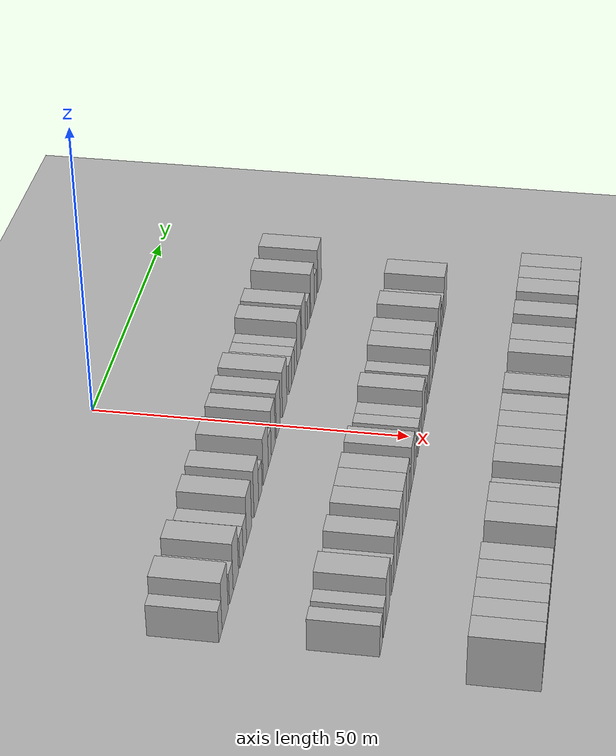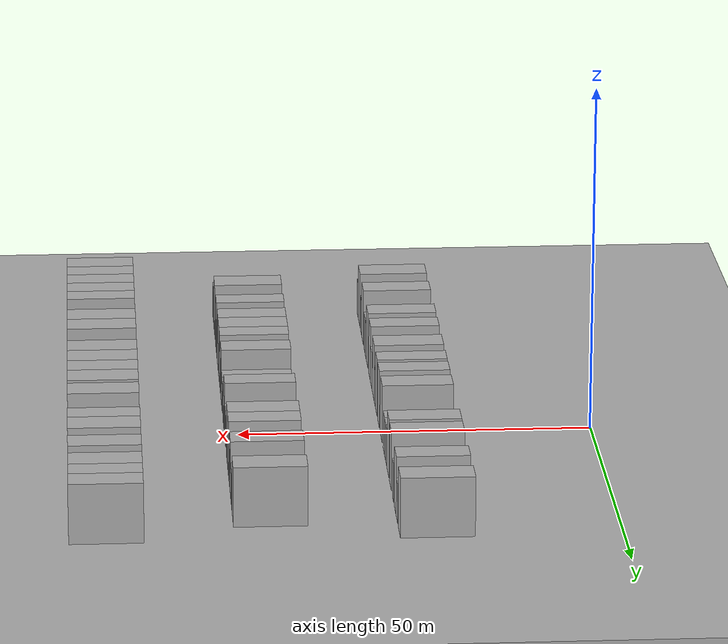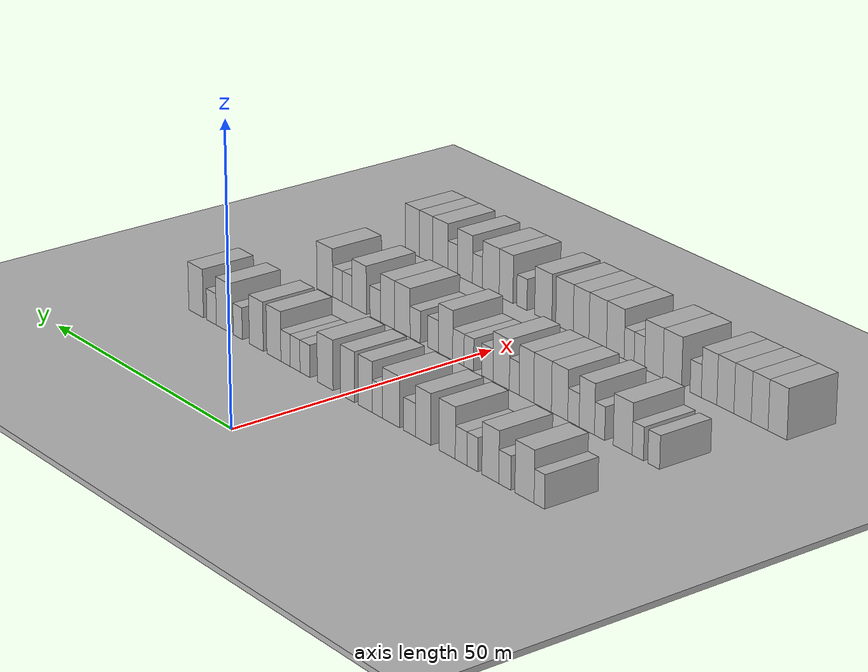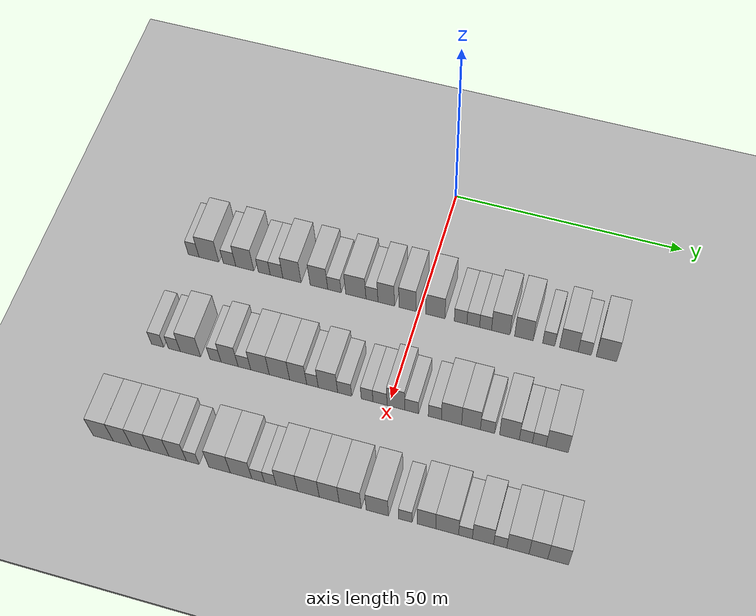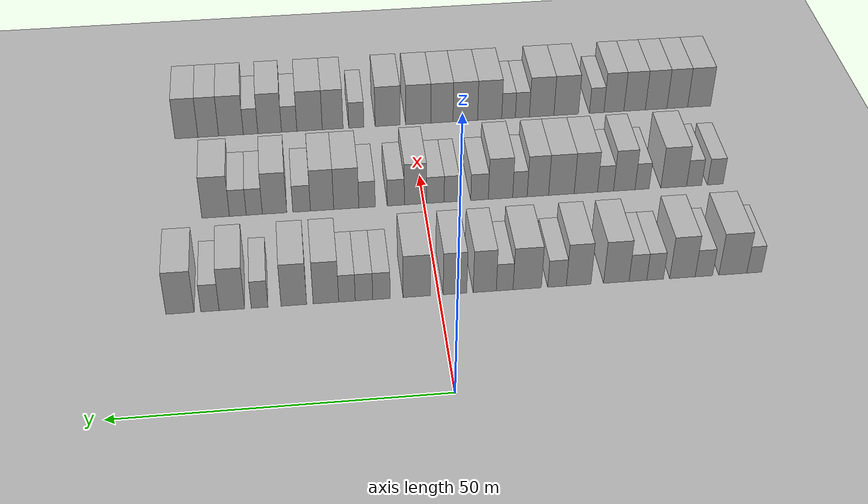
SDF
<sdf version="1.6">
 <world name="default">
  <include><name>ground_plane_1</name><uri>model://HANNAS_ground_plane</uri></include>
  <include>
   <name>ground_plane_2</name>
   <uri>model://HANNAS_ground_plane</uri>
   <pose>100 0 0  0 0 0</pose>
  </include>
  <model name="building_50">
   <static>1</static>
   <pose>25.0000 -49.7026 0 0.000000 0.000000 0.000000</pose>
   <link name="link">
    <pose>0 0 3.00 0 0 0</pose>
    <collision name="collision"><geometry><box><size>10.0000 2.4135 6.0000</size></box></geometry></collision>
    <visual name="visual">
     <cast_shadows>0</cast_shadows>
     <geometry><box><size>10.0000 2.4135 6.0000</size></box></geometry>
     <material>
      <script>
       <uri>model://HANNAS_wall/materials/scripts</uri>
       <uri>model://HANNAS_wall/materials/textures</uri>
       <name>vrc/HANNAS_wall</name>
      </script>
     </material>
    </visual>
   </link>
  </model>
  <model name="building_51">
   <static>1</static>
   <pose>25.0000 -46.2584 0 0.000000 0.000000 0.000000</pose>
   <link name="link">
    <pose>0 0 4.50 0 0 0</pose>
    <collision name="collision"><geometry><box><size>10.0000 4.4748 9.0000</size></box></geometry></collision>
    <visual name="visual">
     <cast_shadows>0</cast_shadows>
     <geometry><box><size>10.0000 4.4748 9.0000</size></box></geometry>
     <material>
      <script>
       <uri>model://HANNAS_wall/materials/scripts</uri>
       <uri>model://HANNAS_wall/materials/textures</uri>
       <name>vrc/HANNAS_wall</name>
      </script>
     </material>
    </visual>
   </link>
  </model>
  <model name="building_52">
   <static>1</static>
   <pose>25.0000 -41.6211 0 0.000000 0.000000 0.000000</pose>
   <link name="link">
    <pose>0 0 3.00 0 0 0</pose>
    <collision name="collision"><geometry><box><size>10.0000 2.7998 6.0000</size></box></geometry></collision>
    <visual name="visual">
     <cast_shadows>0</cast_shadows>
     <geometry><box><size>10.0000 2.7998 6.0000</size></box></geometry>
     <material>
      <script>
       <uri>model://HANNAS_wall/materials/scripts</uri>
       <uri>model://HANNAS_wall/materials/textures</uri>
       <name>vrc/HANNAS_wall</name>
      </script>
     </material>
    </visual>
   </link>
  </model>
  <model name="building_53">
   <static>1</static>
   <pose>25.0000 -38.1938 0 0.000000 0.000000 0.000000</pose>
   <link name="link">
    <pose>0 0 4.50 0 0 0</pose>
    <collision name="collision"><geometry><box><size>10.0000 4.0550 9.0000</size></box></geometry></collision>
    <visual name="visual">
     <cast_shadows>0</cast_shadows>
     <geometry><box><size>10.0000 4.0550 9.0000</size></box></geometry>
     <material>
      <script>
       <uri>model://HANNAS_wall/materials/scripts</uri>
       <uri>model://HANNAS_wall/materials/textures</uri>
       <name>vrc/HANNAS_wall</name>
      </script>
     </material>
    </visual>
   </link>
  </model>
  <model name="building_54">
   <static>1</static>
   <pose>25.0000 -33.8388 0 0.000000 0.000000 0.000000</pose>
   <link name="link">
    <pose>0 0 3.00 0 0 0</pose>
    <collision name="collision"><geometry><box><size>10.0000 2.6549 6.0000</size></box></geometry></collision>
    <visual name="visual">
     <cast_shadows>0</cast_shadows>
     <geometry><box><size>10.0000 2.6549 6.0000</size></box></geometry>
     <material>
      <script>
       <uri>model://HANNAS_wall/materials/scripts</uri>
       <uri>model://HANNAS_wall/materials/textures</uri>
       <name>vrc/HANNAS_wall</name>
      </script>
     </material>
    </visual>
   </link>
  </model>
  <model name="building_55">
   <static>1</static>
   <pose>25.0000 -31.1030 0 0.000000 0.000000 0.000000</pose>
   <link name="link">
    <pose>0 0 3.00 0 0 0</pose>
    <collision name="collision"><geometry><box><size>10.0000 2.8168 6.0000</size></box></geometry></collision>
    <visual name="visual">
     <cast_shadows>0</cast_shadows>
     <geometry><box><size>10.0000 2.8168 6.0000</size></box></geometry>
     <material>
      <script>
       <uri>model://HANNAS_wall/materials/scripts</uri>
       <uri>model://HANNAS_wall/materials/textures</uri>
       <name>vrc/HANNAS_wall</name>
      </script>
     </material>
    </visual>
   </link>
  </model>
  <model name="building_56">
   <static>1</static>
   <pose>25.0000 -27.6765 0 0.000000 0.000000 0.000000</pose>
   <link name="link">
    <pose>0 0 4.50 0 0 0</pose>
    <collision name="collision"><geometry><box><size>10.0000 4.0362 9.0000</size></box></geometry></collision>
    <visual name="visual">
     <cast_shadows>0</cast_shadows>
     <geometry><box><size>10.0000 4.0362 9.0000</size></box></geometry>
     <material>
      <script>
       <uri>model://HANNAS_wall/materials/scripts</uri>
       <uri>model://HANNAS_wall/materials/textures</uri>
       <name>vrc/HANNAS_wall</name>
      </script>
     </material>
    </visual>
   </link>
  </model>
  <model name="building_57">
   <static>1</static>
   <pose>25.0000 -21.7188 0 0.000000 0.000000 0.000000</pose>
   <link name="link">
    <pose>0 0 4.50 0 0 0</pose>
    <collision name="collision"><geometry><box><size>10.0000 3.8792 9.0000</size></box></geometry></collision>
    <visual name="visual">
     <cast_shadows>0</cast_shadows>
     <geometry><box><size>10.0000 3.8792 9.0000</size></box></geometry>
     <material>
      <script>
       <uri>model://HANNAS_wall/materials/scripts</uri>
       <uri>model://HANNAS_wall/materials/textures</uri>
       <name>vrc/HANNAS_wall</name>
      </script>
     </material>
    </visual>
   </link>
  </model>
  <model name="building_58">
   <static>1</static>
   <pose>25.0000 -18.3108 0 0.000000 0.000000 0.000000</pose>
   <link name="link">
    <pose>0 0 3.00 0 0 0</pose>
    <collision name="collision"><geometry><box><size>10.0000 2.9367 6.0000</size></box></geometry></collision>
    <visual name="visual">
     <cast_shadows>0</cast_shadows>
     <geometry><box><size>10.0000 2.9367 6.0000</size></box></geometry>
     <material>
      <script>
       <uri>model://HANNAS_wall/materials/scripts</uri>
       <uri>model://HANNAS_wall/materials/textures</uri>
       <name>vrc/HANNAS_wall</name>
      </script>
     </material>
    </visual>
   </link>
  </model>
  <model name="building_59">
   <static>1</static>
   <pose>25.0000 -13.6233 0 0.000000 0.000000 0.000000</pose>
   <link name="link">
    <pose>0 0 4.50 0 0 0</pose>
    <collision name="collision"><geometry><box><size>10.0000 4.4383 9.0000</size></box></geometry></collision>
    <visual name="visual">
     <cast_shadows>0</cast_shadows>
     <geometry><box><size>10.0000 4.4383 9.0000</size></box></geometry>
     <material>
      <script>
       <uri>model://HANNAS_wall/materials/scripts</uri>
       <uri>model://HANNAS_wall/materials/textures</uri>
       <name>vrc/HANNAS_wall</name>
      </script>
     </material>
    </visual>
   </link>
  </model>
  <model name="building_60">
   <static>1</static>
   <pose>25.0000 -10.0936 0 0.000000 0.000000 0.000000</pose>
   <link name="link">
    <pose>0 0 3.00 0 0 0</pose>
    <collision name="collision"><geometry><box><size>10.0000 2.6211 6.0000</size></box></geometry></collision>
    <visual name="visual">
     <cast_shadows>0</cast_shadows>
     <geometry><box><size>10.0000 2.6211 6.0000</size></box></geometry>
     <material>
      <script>
       <uri>model://HANNAS_wall/materials/scripts</uri>
       <uri>model://HANNAS_wall/materials/textures</uri>
       <name>vrc/HANNAS_wall</name>
      </script>
     </material>
    </visual>
   </link>
  </model>
  <model name="building_61">
   <static>1</static>
   <pose>25.0000 -6.9780 0 0.000000 0.000000 0.000000</pose>
   <link name="link">
    <pose>0 0 4.50 0 0 0</pose>
    <collision name="collision"><geometry><box><size>10.0000 3.6102 9.0000</size></box></geometry></collision>
    <visual name="visual">
     <cast_shadows>0</cast_shadows>
     <geometry><box><size>10.0000 3.6102 9.0000</size></box></geometry>
     <material>
      <script>
       <uri>model://HANNAS_wall/materials/scripts</uri>
       <uri>model://HANNAS_wall/materials/textures</uri>
       <name>vrc/HANNAS_wall</name>
      </script>
     </material>
    </visual>
   </link>
  </model>
  <model name="building_62">
   <static>1</static>
   <pose>25.0000 -2.3363 0 0.000000 0.000000 0.000000</pose>
   <link name="link">
    <pose>0 0 4.50 0 0 0</pose>
    <collision name="collision"><geometry><box><size>10.0000 3.6733 9.0000</size></box></geometry></collision>
    <visual name="visual">
     <cast_shadows>0</cast_shadows>
     <geometry><box><size>10.0000 3.6733 9.0000</size></box></geometry>
     <material>
      <script>
       <uri>model://HANNAS_wall/materials/scripts</uri>
       <uri>model://HANNAS_wall/materials/textures</uri>
       <name>vrc/HANNAS_wall</name>
      </script>
     </material>
    </visual>
   </link>
  </model>
  <model name="building_63">
   <static>1</static>
   <pose>25.0000 3.6020 0 0.000000 0.000000 0.000000</pose>
   <link name="link">
    <pose>0 0 4.50 0 0 0</pose>
    <collision name="collision"><geometry><box><size>10.0000 4.2033 9.0000</size></box></geometry></collision>
    <visual name="visual">
     <cast_shadows>0</cast_shadows>
     <geometry><box><size>10.0000 4.2033 9.0000</size></box></geometry>
     <material>
      <script>
       <uri>model://HANNAS_wall/materials/scripts</uri>
       <uri>model://HANNAS_wall/materials/textures</uri>
       <name>vrc/HANNAS_wall</name>
      </script>
     </material>
    </visual>
   </link>
  </model>
  <model name="building_64">
   <static>1</static>
   <pose>25.0000 9.0512 0 0.000000 0.000000 0.000000</pose>
   <link name="link">
    <pose>0 0 3.00 0 0 0</pose>
    <collision name="collision"><geometry><box><size>10.0000 2.6951 6.0000</size></box></geometry></collision>
    <visual name="visual">
     <cast_shadows>0</cast_shadows>
     <geometry><box><size>10.0000 2.6951 6.0000</size></box></geometry>
     <material>
      <script>
       <uri>model://HANNAS_wall/materials/scripts</uri>
       <uri>model://HANNAS_wall/materials/textures</uri>
       <name>vrc/HANNAS_wall</name>
      </script>
     </material>
    </visual>
   </link>
  </model>
  <model name="building_65">
   <static>1</static>
   <pose>25.0000 11.7474 0 0.000000 0.000000 0.000000</pose>
   <link name="link">
    <pose>0 0 3.00 0 0 0</pose>
    <collision name="collision"><geometry><box><size>10.0000 2.6973 6.0000</size></box></geometry></collision>
    <visual name="visual">
     <cast_shadows>0</cast_shadows>
     <geometry><box><size>10.0000 2.6973 6.0000</size></box></geometry>
     <material>
      <script>
       <uri>model://HANNAS_wall/materials/scripts</uri>
       <uri>model://HANNAS_wall/materials/textures</uri>
       <name>vrc/HANNAS_wall</name>
      </script>
     </material>
    </visual>
   </link>
  </model>
  <model name="building_66">
   <static>1</static>
   <pose>25.0000 14.3661 0 0.000000 0.000000 0.000000</pose>
   <link name="link">
    <pose>0 0 3.00 0 0 0</pose>
    <collision name="collision"><geometry><box><size>10.0000 2.5401 6.0000</size></box></geometry></collision>
    <visual name="visual">
     <cast_shadows>0</cast_shadows>
     <geometry><box><size>10.0000 2.5401 6.0000</size></box></geometry>
     <material>
      <script>
       <uri>model://HANNAS_wall/materials/scripts</uri>
       <uri>model://HANNAS_wall/materials/textures</uri>
       <name>vrc/HANNAS_wall</name>
      </script>
     </material>
    </visual>
   </link>
  </model>
  <model name="building_67">
   <static>1</static>
   <pose>25.0000 17.5938 0 0.000000 0.000000 0.000000</pose>
   <link name="link">
    <pose>0 0 4.50 0 0 0</pose>
    <collision name="collision"><geometry><box><size>10.0000 3.9154 9.0000</size></box></geometry></collision>
    <visual name="visual">
     <cast_shadows>0</cast_shadows>
     <geometry><box><size>10.0000 3.9154 9.0000</size></box></geometry>
     <material>
      <script>
       <uri>model://HANNAS_wall/materials/scripts</uri>
       <uri>model://HANNAS_wall/materials/textures</uri>
       <name>vrc/HANNAS_wall</name>
      </script>
     </material>
    </visual>
   </link>
  </model>
  <model name="building_68">
   <static>1</static>
   <pose>25.0000 22.5076 0 0.000000 0.000000 0.000000</pose>
   <link name="link">
    <pose>0 0 4.50 0 0 0</pose>
    <collision name="collision"><geometry><box><size>10.0000 3.9121 9.0000</size></box></geometry></collision>
    <visual name="visual">
     <cast_shadows>0</cast_shadows>
     <geometry><box><size>10.0000 3.9121 9.0000</size></box></geometry>
     <material>
      <script>
       <uri>model://HANNAS_wall/materials/scripts</uri>
       <uri>model://HANNAS_wall/materials/textures</uri>
       <name>vrc/HANNAS_wall</name>
      </script>
     </material>
    </visual>
   </link>
  </model>
  <model name="building_69">
   <static>1</static>
   <pose>25.0000 27.7364 0 0.000000 0.000000 0.000000</pose>
   <link name="link">
    <pose>0 0 3.00 0 0 0</pose>
    <collision name="collision"><geometry><box><size>10.0000 2.5455 6.0000</size></box></geometry></collision>
    <visual name="visual">
     <cast_shadows>0</cast_shadows>
     <geometry><box><size>10.0000 2.5455 6.0000</size></box></geometry>
     <material>
      <script>
       <uri>model://HANNAS_wall/materials/scripts</uri>
       <uri>model://HANNAS_wall/materials/textures</uri>
       <name>vrc/HANNAS_wall</name>
      </script>
     </material>
    </visual>
   </link>
  </model>
  <model name="building_70">
   <static>1</static>
   <pose>25.0000 31.9500 0 0.000000 0.000000 0.000000</pose>
   <link name="link">
    <pose>0 0 4.50 0 0 0</pose>
    <collision name="collision"><geometry><box><size>10.0000 3.8818 9.0000</size></box></geometry></collision>
    <visual name="visual">
     <cast_shadows>0</cast_shadows>
     <geometry><box><size>10.0000 3.8818 9.0000</size></box></geometry>
     <material>
      <script>
       <uri>model://HANNAS_wall/materials/scripts</uri>
       <uri>model://HANNAS_wall/materials/textures</uri>
       <name>vrc/HANNAS_wall</name>
      </script>
     </material>
    </visual>
   </link>
  </model>
  <model name="building_71">
   <static>1</static>
   <pose>25.0000 35.2787 0 0.000000 0.000000 0.000000</pose>
   <link name="link">
    <pose>0 0 3.00 0 0 0</pose>
    <collision name="collision"><geometry><box><size>10.0000 2.7756 6.0000</size></box></geometry></collision>
    <visual name="visual">
     <cast_shadows>0</cast_shadows>
     <geometry><box><size>10.0000 2.7756 6.0000</size></box></geometry>
     <material>
      <script>
       <uri>model://HANNAS_wall/materials/scripts</uri>
       <uri>model://HANNAS_wall/materials/textures</uri>
       <name>vrc/HANNAS_wall</name>
      </script>
     </material>
    </visual>
   </link>
  </model>
  <model name="building_72">
   <static>1</static>
   <pose>25.0000 39.8035 0 0.000000 0.000000 0.000000</pose>
   <link name="link">
    <pose>0 0 4.50 0 0 0</pose>
    <collision name="collision"><geometry><box><size>10.0000 4.2739 9.0000</size></box></geometry></collision>
    <visual name="visual">
     <cast_shadows>0</cast_shadows>
     <geometry><box><size>10.0000 4.2739 9.0000</size></box></geometry>
     <material>
      <script>
       <uri>model://HANNAS_wall/materials/scripts</uri>
       <uri>model://HANNAS_wall/materials/textures</uri>
       <name>vrc/HANNAS_wall</name>
      </script>
     </material>
    </visual>
   </link>
  </model>
  <model name="building_171">
   <static>1</static>
   <pose>47.0000 -49.2963 0 0.000000 0.000000 0.000000</pose>
   <link name="link">
    <pose>0 0 3.00 0 0 0</pose>
    <collision name="collision"><geometry><box><size>10.0000 2.7084 6.0000</size></box></geometry></collision>
    <visual name="visual">
     <cast_shadows>0</cast_shadows>
     <geometry><box><size>10.0000 2.7084 6.0000</size></box></geometry>
     <material>
      <script>
       <uri>model://HANNAS_wall/materials/scripts</uri>
       <uri>model://HANNAS_wall/materials/textures</uri>
       <name>vrc/HANNAS_wall</name>
      </script>
     </material>
    </visual>
   </link>
  </model>
  <model name="building_172">
   <static>1</static>
   <pose>47.0000 -45.6466 0 0.000000 0.000000 0.000000</pose>
   <link name="link">
    <pose>0 0 3.00 0 0 0</pose>
    <collision name="collision"><geometry><box><size>10.0000 2.5911 6.0000</size></box></geometry></collision>
    <visual name="visual">
     <cast_shadows>0</cast_shadows>
     <geometry><box><size>10.0000 2.5911 6.0000</size></box></geometry>
     <material>
      <script>
       <uri>model://HANNAS_wall/materials/scripts</uri>
       <uri>model://HANNAS_wall/materials/textures</uri>
       <name>vrc/HANNAS_wall</name>
      </script>
     </material>
    </visual>
   </link>
  </model>
  <model name="building_173">
   <static>1</static>
   <pose>47.0000 -42.1407 0 0.000000 0.000000 0.000000</pose>
   <link name="link">
    <pose>0 0 4.50 0 0 0</pose>
    <collision name="collision"><geometry><box><size>10.0000 4.4206 9.0000</size></box></geometry></collision>
    <visual name="visual">
     <cast_shadows>0</cast_shadows>
     <geometry><box><size>10.0000 4.4206 9.0000</size></box></geometry>
     <material>
      <script>
       <uri>model://HANNAS_wall/materials/scripts</uri>
       <uri>model://HANNAS_wall/materials/textures</uri>
       <name>vrc/HANNAS_wall</name>
      </script>
     </material>
    </visual>
   </link>
  </model>
  <model name="building_174">
   <static>1</static>
   <pose>47.0000 -36.7219 0 0.000000 0.000000 0.000000</pose>
   <link name="link">
    <pose>0 0 3.00 0 0 0</pose>
    <collision name="collision"><geometry><box><size>10.0000 2.4172 6.0000</size></box></geometry></collision>
    <visual name="visual">
     <cast_shadows>0</cast_shadows>
     <geometry><box><size>10.0000 2.4172 6.0000</size></box></geometry>
     <material>
      <script>
       <uri>model://HANNAS_wall/materials/scripts</uri>
       <uri>model://HANNAS_wall/materials/textures</uri>
       <name>vrc/HANNAS_wall</name>
      </script>
     </material>
    </visual>
   </link>
  </model>
  <model name="building_175">
   <static>1</static>
   <pose>47.0000 -33.6769 0 0.000000 0.000000 0.000000</pose>
   <link name="link">
    <pose>0 0 4.50 0 0 0</pose>
    <collision name="collision"><geometry><box><size>10.0000 3.6727 9.0000</size></box></geometry></collision>
    <visual name="visual">
     <cast_shadows>0</cast_shadows>
     <geometry><box><size>10.0000 3.6727 9.0000</size></box></geometry>
     <material>
      <script>
       <uri>model://HANNAS_wall/materials/scripts</uri>
       <uri>model://HANNAS_wall/materials/textures</uri>
       <name>vrc/HANNAS_wall</name>
      </script>
     </material>
    </visual>
   </link>
  </model>
  <model name="building_176">
   <static>1</static>
   <pose>47.0000 -30.4790 0 0.000000 0.000000 0.000000</pose>
   <link name="link">
    <pose>0 0 3.00 0 0 0</pose>
    <collision name="collision"><geometry><box><size>10.0000 2.7230 6.0000</size></box></geometry></collision>
    <visual name="visual">
     <cast_shadows>0</cast_shadows>
     <geometry><box><size>10.0000 2.7230 6.0000</size></box></geometry>
     <material>
      <script>
       <uri>model://HANNAS_wall/materials/scripts</uri>
       <uri>model://HANNAS_wall/materials/textures</uri>
       <name>vrc/HANNAS_wall</name>
      </script>
     </material>
    </visual>
   </link>
  </model>
  <model name="building_177">
   <static>1</static>
   <pose>47.0000 -27.1338 0 0.000000 0.000000 0.000000</pose>
   <link name="link">
    <pose>0 0 4.50 0 0 0</pose>
    <collision name="collision"><geometry><box><size>10.0000 3.9676 9.0000</size></box></geometry></collision>
    <visual name="visual">
     <cast_shadows>0</cast_shadows>
     <geometry><box><size>10.0000 3.9676 9.0000</size></box></geometry>
     <material>
      <script>
       <uri>model://HANNAS_wall/materials/scripts</uri>
       <uri>model://HANNAS_wall/materials/textures</uri>
       <name>vrc/HANNAS_wall</name>
      </script>
     </material>
    </visual>
   </link>
  </model>
  <model name="building_178">
   <static>1</static>
   <pose>47.0000 -22.9778 0 0.000000 0.000000 0.000000</pose>
   <link name="link">
    <pose>0 0 4.50 0 0 0</pose>
    <collision name="collision"><geometry><box><size>10.0000 4.3443 9.0000</size></box></geometry></collision>
    <visual name="visual">
     <cast_shadows>0</cast_shadows>
     <geometry><box><size>10.0000 4.3443 9.0000</size></box></geometry>
     <material>
      <script>
       <uri>model://HANNAS_wall/materials/scripts</uri>
       <uri>model://HANNAS_wall/materials/textures</uri>
       <name>vrc/HANNAS_wall</name>
      </script>
     </material>
    </visual>
   </link>
  </model>
  <model name="building_179">
   <static>1</static>
   <pose>47.0000 -18.9948 0 0.000000 0.000000 0.000000</pose>
   <link name="link">
    <pose>0 0 4.50 0 0 0</pose>
    <collision name="collision"><geometry><box><size>10.0000 3.6217 9.0000</size></box></geometry></collision>
    <visual name="visual">
     <cast_shadows>0</cast_shadows>
     <geometry><box><size>10.0000 3.6217 9.0000</size></box></geometry>
     <material>
      <script>
       <uri>model://HANNAS_wall/materials/scripts</uri>
       <uri>model://HANNAS_wall/materials/textures</uri>
       <name>vrc/HANNAS_wall</name>
      </script>
     </material>
    </visual>
   </link>
  </model>
  <model name="building_180">
   <static>1</static>
   <pose>47.0000 -15.9604 0 0.000000 0.000000 0.000000</pose>
   <link name="link">
    <pose>0 0 3.00 0 0 0</pose>
    <collision name="collision"><geometry><box><size>10.0000 2.4471 6.0000</size></box></geometry></collision>
    <visual name="visual">
     <cast_shadows>0</cast_shadows>
     <geometry><box><size>10.0000 2.4471 6.0000</size></box></geometry>
     <material>
      <script>
       <uri>model://HANNAS_wall/materials/scripts</uri>
       <uri>model://HANNAS_wall/materials/textures</uri>
       <name>vrc/HANNAS_wall</name>
      </script>
     </material>
    </visual>
   </link>
  </model>
  <model name="building_181">
   <static>1</static>
   <pose>47.0000 -12.6867 0 0.000000 0.000000 0.000000</pose>
   <link name="link">
    <pose>0 0 4.50 0 0 0</pose>
    <collision name="collision"><geometry><box><size>10.0000 4.1001 9.0000</size></box></geometry></collision>
    <visual name="visual">
     <cast_shadows>0</cast_shadows>
     <geometry><box><size>10.0000 4.1001 9.0000</size></box></geometry>
     <material>
      <script>
       <uri>model://HANNAS_wall/materials/scripts</uri>
       <uri>model://HANNAS_wall/materials/textures</uri>
       <name>vrc/HANNAS_wall</name>
      </script>
     </material>
    </visual>
   </link>
  </model>
  <model name="building_182">
   <static>1</static>
   <pose>47.0000 -9.1597 0 0.000000 0.000000 0.000000</pose>
   <link name="link">
    <pose>0 0 3.00 0 0 0</pose>
    <collision name="collision"><geometry><box><size>10.0000 2.9540 6.0000</size></box></geometry></collision>
    <visual name="visual">
     <cast_shadows>0</cast_shadows>
     <geometry><box><size>10.0000 2.9540 6.0000</size></box></geometry>
     <material>
      <script>
       <uri>model://HANNAS_wall/materials/scripts</uri>
       <uri>model://HANNAS_wall/materials/textures</uri>
       <name>vrc/HANNAS_wall</name>
      </script>
     </material>
    </visual>
   </link>
  </model>
  <model name="building_183">
   <static>1</static>
   <pose>47.0000 -4.4528 0 0.000000 0.000000 0.000000</pose>
   <link name="link">
    <pose>0 0 3.00 0 0 0</pose>
    <collision name="collision"><geometry><box><size>10.0000 2.4597 6.0000</size></box></geometry></collision>
    <visual name="visual">
     <cast_shadows>0</cast_shadows>
     <geometry><box><size>10.0000 2.4597 6.0000</size></box></geometry>
     <material>
      <script>
       <uri>model://HANNAS_wall/materials/scripts</uri>
       <uri>model://HANNAS_wall/materials/textures</uri>
       <name>vrc/HANNAS_wall</name>
      </script>
     </material>
    </visual>
   </link>
  </model>
  <model name="building_184">
   <static>1</static>
   <pose>47.0000 -1.7425 0 0.000000 0.000000 0.000000</pose>
   <link name="link">
    <pose>0 0 3.00 0 0 0</pose>
    <collision name="collision"><geometry><box><size>10.0000 2.9610 6.0000</size></box></geometry></collision>
    <visual name="visual">
     <cast_shadows>0</cast_shadows>
     <geometry><box><size>10.0000 2.9610 6.0000</size></box></geometry>
     <material>
      <script>
       <uri>model://HANNAS_wall/materials/scripts</uri>
       <uri>model://HANNAS_wall/materials/textures</uri>
       <name>vrc/HANNAS_wall</name>
      </script>
     </material>
    </visual>
   </link>
  </model>
  <model name="building_185">
   <static>1</static>
   <pose>47.0000 1.5806 0 0.000000 0.000000 0.000000</pose>
   <link name="link">
    <pose>0 0 4.50 0 0 0</pose>
    <collision name="collision"><geometry><box><size>10.0000 3.6852 9.0000</size></box></geometry></collision>
    <visual name="visual">
     <cast_shadows>0</cast_shadows>
     <geometry><box><size>10.0000 3.6852 9.0000</size></box></geometry>
     <material>
      <script>
       <uri>model://HANNAS_wall/materials/scripts</uri>
       <uri>model://HANNAS_wall/materials/textures</uri>
       <name>vrc/HANNAS_wall</name>
      </script>
     </material>
    </visual>
   </link>
  </model>
  <model name="building_186">
   <static>1</static>
   <pose>47.0000 4.8458 0 0.000000 0.000000 0.000000</pose>
   <link name="link">
    <pose>0 0 3.00 0 0 0</pose>
    <collision name="collision"><geometry><box><size>10.0000 2.8451 6.0000</size></box></geometry></collision>
    <visual name="visual">
     <cast_shadows>0</cast_shadows>
     <geometry><box><size>10.0000 2.8451 6.0000</size></box></geometry>
     <material>
      <script>
       <uri>model://HANNAS_wall/materials/scripts</uri>
       <uri>model://HANNAS_wall/materials/textures</uri>
       <name>vrc/HANNAS_wall</name>
      </script>
     </material>
    </visual>
   </link>
  </model>
  <model name="building_187">
   <static>1</static>
   <pose>47.0000 9.6285 0 0.000000 0.000000 0.000000</pose>
   <link name="link">
    <pose>0 0 3.00 0 0 0</pose>
    <collision name="collision"><geometry><box><size>10.0000 2.7205 6.0000</size></box></geometry></collision>
    <visual name="visual">
     <cast_shadows>0</cast_shadows>
     <geometry><box><size>10.0000 2.7205 6.0000</size></box></geometry>
     <material>
      <script>
       <uri>model://HANNAS_wall/materials/scripts</uri>
       <uri>model://HANNAS_wall/materials/textures</uri>
       <name>vrc/HANNAS_wall</name>
      </script>
     </material>
    </visual>
   </link>
  </model>
  <model name="building_188">
   <static>1</static>
   <pose>47.0000 13.0654 0 0.000000 0.000000 0.000000</pose>
   <link name="link">
    <pose>0 0 4.50 0 0 0</pose>
    <collision name="collision"><geometry><box><size>10.0000 4.1533 9.0000</size></box></geometry></collision>
    <visual name="visual">
     <cast_shadows>0</cast_shadows>
     <geometry><box><size>10.0000 4.1533 9.0000</size></box></geometry>
     <material>
      <script>
       <uri>model://HANNAS_wall/materials/scripts</uri>
       <uri>model://HANNAS_wall/materials/textures</uri>
       <name>vrc/HANNAS_wall</name>
      </script>
     </material>
    </visual>
   </link>
  </model>
  <model name="building_189">
   <static>1</static>
   <pose>47.0000 17.0627 0 0.000000 0.000000 0.000000</pose>
   <link name="link">
    <pose>0 0 4.50 0 0 0</pose>
    <collision name="collision"><geometry><box><size>10.0000 3.8413 9.0000</size></box></geometry></collision>
    <visual name="visual">
     <cast_shadows>0</cast_shadows>
     <geometry><box><size>10.0000 3.8413 9.0000</size></box></geometry>
     <material>
      <script>
       <uri>model://HANNAS_wall/materials/scripts</uri>
       <uri>model://HANNAS_wall/materials/textures</uri>
       <name>vrc/HANNAS_wall</name>
      </script>
     </material>
    </visual>
   </link>
  </model>
  <model name="building_190">
   <static>1</static>
   <pose>47.0000 20.4379 0 0.000000 0.000000 0.000000</pose>
   <link name="link">
    <pose>0 0 3.00 0 0 0</pose>
    <collision name="collision"><geometry><box><size>10.0000 2.9091 6.0000</size></box></geometry></collision>
    <visual name="visual">
     <cast_shadows>0</cast_shadows>
     <geometry><box><size>10.0000 2.9091 6.0000</size></box></geometry>
     <material>
      <script>
       <uri>model://HANNAS_wall/materials/scripts</uri>
       <uri>model://HANNAS_wall/materials/textures</uri>
       <name>vrc/HANNAS_wall</name>
      </script>
     </material>
    </visual>
   </link>
  </model>
  <model name="building_191">
   <static>1</static>
   <pose>47.0000 24.8988 0 0.000000 0.000000 0.000000</pose>
   <link name="link">
    <pose>0 0 4.50 0 0 0</pose>
    <collision name="collision"><geometry><box><size>10.0000 4.0127 9.0000</size></box></geometry></collision>
    <visual name="visual">
     <cast_shadows>0</cast_shadows>
     <geometry><box><size>10.0000 4.0127 9.0000</size></box></geometry>
     <material>
      <script>
       <uri>model://HANNAS_wall/materials/scripts</uri>
       <uri>model://HANNAS_wall/materials/textures</uri>
       <name>vrc/HANNAS_wall</name>
      </script>
     </material>
    </visual>
   </link>
  </model>
  <model name="building_192">
   <static>1</static>
   <pose>47.0000 28.2275 0 0.000000 0.000000 0.000000</pose>
   <link name="link">
    <pose>0 0 3.00 0 0 0</pose>
    <collision name="collision"><geometry><box><size>10.0000 2.6448 6.0000</size></box></geometry></collision>
    <visual name="visual">
     <cast_shadows>0</cast_shadows>
     <geometry><box><size>10.0000 2.6448 6.0000</size></box></geometry>
     <material>
      <script>
       <uri>model://HANNAS_wall/materials/scripts</uri>
       <uri>model://HANNAS_wall/materials/textures</uri>
       <name>vrc/HANNAS_wall</name>
      </script>
     </material>
    </visual>
   </link>
  </model>
  <model name="building_193">
   <static>1</static>
   <pose>47.0000 30.9276 0 0.000000 0.000000 0.000000</pose>
   <link name="link">
    <pose>0 0 3.00 0 0 0</pose>
    <collision name="collision"><geometry><box><size>10.0000 2.7553 6.0000</size></box></geometry></collision>
    <visual name="visual">
     <cast_shadows>0</cast_shadows>
     <geometry><box><size>10.0000 2.7553 6.0000</size></box></geometry>
     <material>
      <script>
       <uri>model://HANNAS_wall/materials/scripts</uri>
       <uri>model://HANNAS_wall/materials/textures</uri>
       <name>vrc/HANNAS_wall</name>
      </script>
     </material>
    </visual>
   </link>
  </model>
  <model name="building_194">
   <static>1</static>
   <pose>47.0000 34.5505 0 0.000000 0.000000 0.000000</pose>
   <link name="link">
    <pose>0 0 4.50 0 0 0</pose>
    <collision name="collision"><geometry><box><size>10.0000 4.4904 9.0000</size></box></geometry></collision>
    <visual name="visual">
     <cast_shadows>0</cast_shadows>
     <geometry><box><size>10.0000 4.4904 9.0000</size></box></geometry>
     <material>
      <script>
       <uri>model://HANNAS_wall/materials/scripts</uri>
       <uri>model://HANNAS_wall/materials/textures</uri>
       <name>vrc/HANNAS_wall</name>
      </script>
     </material>
    </visual>
   </link>
  </model>
  <model name="building_289">
   <static>1</static>
   <pose>69.0000 -52.1802 0 0.000000 0.000000 0.000000</pose>
   <link name="link">
    <pose>0 0 4.50 0 0 0</pose>
    <collision name="collision"><geometry><box><size>10.0000 4.2452 9.0000</size></box></geometry></collision>
    <visual name="visual">
     <cast_shadows>0</cast_shadows>
     <geometry><box><size>10.0000 4.2452 9.0000</size></box></geometry>
     <material>
      <script>
       <uri>model://HANNAS_wall/materials/scripts</uri>
       <uri>model://HANNAS_wall/materials/textures</uri>
       <name>vrc/HANNAS_wall</name>
      </script>
     </material>
    </visual>
   </link>
  </model>
  <model name="building_290">
   <static>1</static>
   <pose>69.0000 -48.1522 0 0.000000 0.000000 0.000000</pose>
   <link name="link">
    <pose>0 0 4.50 0 0 0</pose>
    <collision name="collision"><geometry><box><size>10.0000 3.8106 9.0000</size></box></geometry></collision>
    <visual name="visual">
     <cast_shadows>0</cast_shadows>
     <geometry><box><size>10.0000 3.8106 9.0000</size></box></geometry>
     <material>
      <script>
       <uri>model://HANNAS_wall/materials/scripts</uri>
       <uri>model://HANNAS_wall/materials/textures</uri>
       <name>vrc/HANNAS_wall</name>
      </script>
     </material>
    </visual>
   </link>
  </model>
  <model name="building_291">
   <static>1</static>
   <pose>69.0000 -44.2676 0 0.000000 0.000000 0.000000</pose>
   <link name="link">
    <pose>0 0 4.50 0 0 0</pose>
    <collision name="collision"><geometry><box><size>10.0000 3.9586 9.0000</size></box></geometry></collision>
    <visual name="visual">
     <cast_shadows>0</cast_shadows>
     <geometry><box><size>10.0000 3.9586 9.0000</size></box></geometry>
     <material>
      <script>
       <uri>model://HANNAS_wall/materials/scripts</uri>
       <uri>model://HANNAS_wall/materials/textures</uri>
       <name>vrc/HANNAS_wall</name>
      </script>
     </material>
    </visual>
   </link>
  </model>
  <model name="building_292">
   <static>1</static>
   <pose>69.0000 -40.3200 0 0.000000 0.000000 0.000000</pose>
   <link name="link">
    <pose>0 0 4.50 0 0 0</pose>
    <collision name="collision"><geometry><box><size>10.0000 3.9367 9.0000</size></box></geometry></collision>
    <visual name="visual">
     <cast_shadows>0</cast_shadows>
     <geometry><box><size>10.0000 3.9367 9.0000</size></box></geometry>
     <material>
      <script>
       <uri>model://HANNAS_wall/materials/scripts</uri>
       <uri>model://HANNAS_wall/materials/textures</uri>
       <name>vrc/HANNAS_wall</name>
      </script>
     </material>
    </visual>
   </link>
  </model>
  <model name="building_293">
   <static>1</static>
   <pose>69.0000 -36.5289 0 0.000000 0.000000 0.000000</pose>
   <link name="link">
    <pose>0 0 4.50 0 0 0</pose>
    <collision name="collision"><geometry><box><size>10.0000 3.6454 9.0000</size></box></geometry></collision>
    <visual name="visual">
     <cast_shadows>0</cast_shadows>
     <geometry><box><size>10.0000 3.6454 9.0000</size></box></geometry>
     <material>
      <script>
       <uri>model://HANNAS_wall/materials/scripts</uri>
       <uri>model://HANNAS_wall/materials/textures</uri>
       <name>vrc/HANNAS_wall</name>
      </script>
     </material>
    </visual>
   </link>
  </model>
  <model name="building_294">
   <static>1</static>
   <pose>69.0000 -33.3792 0 0.000000 0.000000 0.000000</pose>
   <link name="link">
    <pose>0 0 3.00 0 0 0</pose>
    <collision name="collision"><geometry><box><size>10.0000 2.6539 6.0000</size></box></geometry></collision>
    <visual name="visual">
     <cast_shadows>0</cast_shadows>
     <geometry><box><size>10.0000 2.6539 6.0000</size></box></geometry>
     <material>
      <script>
       <uri>model://HANNAS_wall/materials/scripts</uri>
       <uri>model://HANNAS_wall/materials/textures</uri>
       <name>vrc/HANNAS_wall</name>
      </script>
     </material>
    </visual>
   </link>
  </model>
  <model name="building_295">
   <static>1</static>
   <pose>69.0000 -27.8211 0 0.000000 0.000000 0.000000</pose>
   <link name="link">
    <pose>0 0 4.50 0 0 0</pose>
    <collision name="collision"><geometry><box><size>10.0000 4.4624 9.0000</size></box></geometry></collision>
    <visual name="visual">
     <cast_shadows>0</cast_shadows>
     <geometry><box><size>10.0000 4.4624 9.0000</size></box></geometry>
     <material>
      <script>
       <uri>model://HANNAS_wall/materials/scripts</uri>
       <uri>model://HANNAS_wall/materials/textures</uri>
       <name>vrc/HANNAS_wall</name>
      </script>
     </material>
    </visual>
   </link>
  </model>
  <model name="building_296">
   <static>1</static>
   <pose>69.0000 -23.3697 0 0.000000 0.000000 0.000000</pose>
   <link name="link">
    <pose>0 0 4.50 0 0 0</pose>
    <collision name="collision"><geometry><box><size>10.0000 4.4403 9.0000</size></box></geometry></collision>
    <visual name="visual">
     <cast_shadows>0</cast_shadows>
     <geometry><box><size>10.0000 4.4403 9.0000</size></box></geometry>
     <material>
      <script>
       <uri>model://HANNAS_wall/materials/scripts</uri>
       <uri>model://HANNAS_wall/materials/textures</uri>
       <name>vrc/HANNAS_wall</name>
      </script>
     </material>
    </visual>
   </link>
  </model>
  <model name="building_297">
   <static>1</static>
   <pose>69.0000 -19.8793 0 0.000000 0.000000 0.000000</pose>
   <link name="link">
    <pose>0 0 3.00 0 0 0</pose>
    <collision name="collision"><geometry><box><size>10.0000 2.5406 6.0000</size></box></geometry></collision>
    <visual name="visual">
     <cast_shadows>0</cast_shadows>
     <geometry><box><size>10.0000 2.5406 6.0000</size></box></geometry>
     <material>
      <script>
       <uri>model://HANNAS_wall/materials/scripts</uri>
       <uri>model://HANNAS_wall/materials/textures</uri>
       <name>vrc/HANNAS_wall</name>
      </script>
     </material>
    </visual>
   </link>
  </model>
  <model name="building_298">
   <static>1</static>
   <pose>69.0000 -17.3791 0 0.000000 0.000000 0.000000</pose>
   <link name="link">
    <pose>0 0 3.00 0 0 0</pose>
    <collision name="collision"><geometry><box><size>10.0000 2.4598 6.0000</size></box></geometry></collision>
    <visual name="visual">
     <cast_shadows>0</cast_shadows>
     <geometry><box><size>10.0000 2.4598 6.0000</size></box></geometry>
     <material>
      <script>
       <uri>model://HANNAS_wall/materials/scripts</uri>
       <uri>model://HANNAS_wall/materials/textures</uri>
       <name>vrc/HANNAS_wall</name>
      </script>
     </material>
    </visual>
   </link>
  </model>
  <model name="building_299">
   <static>1</static>
   <pose>69.0000 -13.9715 0 0.000000 0.000000 0.000000</pose>
   <link name="link">
    <pose>0 0 4.50 0 0 0</pose>
    <collision name="collision"><geometry><box><size>10.0000 4.3554 9.0000</size></box></geometry></collision>
    <visual name="visual">
     <cast_shadows>0</cast_shadows>
     <geometry><box><size>10.0000 4.3554 9.0000</size></box></geometry>
     <material>
      <script>
       <uri>model://HANNAS_wall/materials/scripts</uri>
       <uri>model://HANNAS_wall/materials/textures</uri>
       <name>vrc/HANNAS_wall</name>
      </script>
     </material>
    </visual>
   </link>
  </model>
  <model name="building_300">
   <static>1</static>
   <pose>69.0000 -9.5926 0 0.000000 0.000000 0.000000</pose>
   <link name="link">
    <pose>0 0 4.50 0 0 0</pose>
    <collision name="collision"><geometry><box><size>10.0000 4.4025 9.0000</size></box></geometry></collision>
    <visual name="visual">
     <cast_shadows>0</cast_shadows>
     <geometry><box><size>10.0000 4.4025 9.0000</size></box></geometry>
     <material>
      <script>
       <uri>model://HANNAS_wall/materials/scripts</uri>
       <uri>model://HANNAS_wall/materials/textures</uri>
       <name>vrc/HANNAS_wall</name>
      </script>
     </material>
    </visual>
   </link>
  </model>
  <model name="building_301">
   <static>1</static>
   <pose>69.0000 -5.3876 0 0.000000 0.000000 0.000000</pose>
   <link name="link">
    <pose>0 0 4.50 0 0 0</pose>
    <collision name="collision"><geometry><box><size>10.0000 4.0074 9.0000</size></box></geometry></collision>
    <visual name="visual">
     <cast_shadows>0</cast_shadows>
     <geometry><box><size>10.0000 4.0074 9.0000</size></box></geometry>
     <material>
      <script>
       <uri>model://HANNAS_wall/materials/scripts</uri>
       <uri>model://HANNAS_wall/materials/textures</uri>
       <name>vrc/HANNAS_wall</name>
      </script>
     </material>
    </visual>
   </link>
  </model>
  <model name="building_302">
   <static>1</static>
   <pose>69.0000 -1.1595 0 0.000000 0.000000 0.000000</pose>
   <link name="link">
    <pose>0 0 4.50 0 0 0</pose>
    <collision name="collision"><geometry><box><size>10.0000 4.4488 9.0000</size></box></geometry></collision>
    <visual name="visual">
     <cast_shadows>0</cast_shadows>
     <geometry><box><size>10.0000 4.4488 9.0000</size></box></geometry>
     <material>
      <script>
       <uri>model://HANNAS_wall/materials/scripts</uri>
       <uri>model://HANNAS_wall/materials/textures</uri>
       <name>vrc/HANNAS_wall</name>
      </script>
     </material>
    </visual>
   </link>
  </model>
  <model name="building_303">
   <static>1</static>
   <pose>69.0000 4.2977 0 0.000000 0.000000 0.000000</pose>
   <link name="link">
    <pose>0 0 4.50 0 0 0</pose>
    <collision name="collision"><geometry><box><size>10.0000 4.4656 9.0000</size></box></geometry></collision>
    <visual name="visual">
     <cast_shadows>0</cast_shadows>
     <geometry><box><size>10.0000 4.4656 9.0000</size></box></geometry>
     <material>
      <script>
       <uri>model://HANNAS_wall/materials/scripts</uri>
       <uri>model://HANNAS_wall/materials/textures</uri>
       <name>vrc/HANNAS_wall</name>
      </script>
     </material>
    </visual>
   </link>
  </model>
  <model name="building_304">
   <static>1</static>
   <pose>69.0000 9.8804 0 0.000000 0.000000 0.000000</pose>
   <link name="link">
    <pose>0 0 3.00 0 0 0</pose>
    <collision name="collision"><geometry><box><size>10.0000 2.6998 6.0000</size></box></geometry></collision>
    <visual name="visual">
     <cast_shadows>0</cast_shadows>
     <geometry><box><size>10.0000 2.6998 6.0000</size></box></geometry>
     <material>
      <script>
       <uri>model://HANNAS_wall/materials/scripts</uri>
       <uri>model://HANNAS_wall/materials/textures</uri>
       <name>vrc/HANNAS_wall</name>
      </script>
     </material>
    </visual>
   </link>
  </model>
  <model name="building_305">
   <static>1</static>
   <pose>69.0000 14.0715 0 0.000000 0.000000 0.000000</pose>
   <link name="link">
    <pose>0 0 4.50 0 0 0</pose>
    <collision name="collision"><geometry><box><size>10.0000 3.6824 9.0000</size></box></geometry></collision>
    <visual name="visual">
     <cast_shadows>0</cast_shadows>
     <geometry><box><size>10.0000 3.6824 9.0000</size></box></geometry>
     <material>
      <script>
       <uri>model://HANNAS_wall/materials/scripts</uri>
       <uri>model://HANNAS_wall/materials/textures</uri>
       <name>vrc/HANNAS_wall</name>
      </script>
     </material>
    </visual>
   </link>
  </model>
  <model name="building_306">
   <static>1</static>
   <pose>69.0000 18.1599 0 0.000000 0.000000 0.000000</pose>
   <link name="link">
    <pose>0 0 4.50 0 0 0</pose>
    <collision name="collision"><geometry><box><size>10.0000 4.4944 9.0000</size></box></geometry></collision>
    <visual name="visual">
     <cast_shadows>0</cast_shadows>
     <geometry><box><size>10.0000 4.4944 9.0000</size></box></geometry>
     <material>
      <script>
       <uri>model://HANNAS_wall/materials/scripts</uri>
       <uri>model://HANNAS_wall/materials/textures</uri>
       <name>vrc/HANNAS_wall</name>
      </script>
     </material>
    </visual>
   </link>
  </model>
  <model name="building_307">
   <static>1</static>
   <pose>69.0000 21.7640 0 0.000000 0.000000 0.000000</pose>
   <link name="link">
    <pose>0 0 3.00 0 0 0</pose>
    <collision name="collision"><geometry><box><size>10.0000 2.7138 6.0000</size></box></geometry></collision>
    <visual name="visual">
     <cast_shadows>0</cast_shadows>
     <geometry><box><size>10.0000 2.7138 6.0000</size></box></geometry>
     <material>
      <script>
       <uri>model://HANNAS_wall/materials/scripts</uri>
       <uri>model://HANNAS_wall/materials/textures</uri>
       <name>vrc/HANNAS_wall</name>
      </script>
     </material>
    </visual>
   </link>
  </model>
  <model name="building_308">
   <static>1</static>
   <pose>69.0000 25.1993 0 0.000000 0.000000 0.000000</pose>
   <link name="link">
    <pose>0 0 4.50 0 0 0</pose>
    <collision name="collision"><geometry><box><size>10.0000 4.1568 9.0000</size></box></geometry></collision>
    <visual name="visual">
     <cast_shadows>0</cast_shadows>
     <geometry><box><size>10.0000 4.1568 9.0000</size></box></geometry>
     <material>
      <script>
       <uri>model://HANNAS_wall/materials/scripts</uri>
       <uri>model://HANNAS_wall/materials/textures</uri>
       <name>vrc/HANNAS_wall</name>
      </script>
     </material>
    </visual>
   </link>
  </model>
  <model name="building_309">
   <static>1</static>
   <pose>69.0000 28.5610 0 0.000000 0.000000 0.000000</pose>
   <link name="link">
    <pose>0 0 3.00 0 0 0</pose>
    <collision name="collision"><geometry><box><size>10.0000 2.5665 6.0000</size></box></geometry></collision>
    <visual name="visual">
     <cast_shadows>0</cast_shadows>
     <geometry><box><size>10.0000 2.5665 6.0000</size></box></geometry>
     <material>
      <script>
       <uri>model://HANNAS_wall/materials/scripts</uri>
       <uri>model://HANNAS_wall/materials/textures</uri>
       <name>vrc/HANNAS_wall</name>
      </script>
     </material>
    </visual>
   </link>
  </model>
  <model name="building_310">
   <static>1</static>
   <pose>69.0000 32.0026 0 0.000000 0.000000 0.000000</pose>
   <link name="link">
    <pose>0 0 4.50 0 0 0</pose>
    <collision name="collision"><geometry><box><size>10.0000 4.3167 9.0000</size></box></geometry></collision>
    <visual name="visual">
     <cast_shadows>0</cast_shadows>
     <geometry><box><size>10.0000 4.3167 9.0000</size></box></geometry>
     <material>
      <script>
       <uri>model://HANNAS_wall/materials/scripts</uri>
       <uri>model://HANNAS_wall/materials/textures</uri>
       <name>vrc/HANNAS_wall</name>
      </script>
     </material>
    </visual>
   </link>
  </model>
  <model name="building_311">
   <static>1</static>
   <pose>69.0000 35.9742 0 0.000000 0.000000 0.000000</pose>
   <link name="link">
    <pose>0 0 4.50 0 0 0</pose>
    <collision name="collision"><geometry><box><size>10.0000 3.6265 9.0000</size></box></geometry></collision>
    <visual name="visual">
     <cast_shadows>0</cast_shadows>
     <geometry><box><size>10.0000 3.6265 9.0000</size></box></geometry>
     <material>
      <script>
       <uri>model://HANNAS_wall/materials/scripts</uri>
       <uri>model://HANNAS_wall/materials/textures</uri>
       <name>vrc/HANNAS_wall</name>
      </script>
     </material>
    </visual>
   </link>
  </model>
  <model name="building_312">
   <static>1</static>
   <pose>69.0000 39.7985 0 0.000000 0.000000 0.000000</pose>
   <link name="link">
    <pose>0 0 4.50 0 0 0</pose>
    <collision name="collision"><geometry><box><size>10.0000 4.0220 9.0000</size></box></geometry></collision>
    <visual name="visual">
     <cast_shadows>0</cast_shadows>
     <geometry><box><size>10.0000 4.0220 9.0000</size></box></geometry>
     <material>
      <script>
       <uri>model://HANNAS_wall/materials/scripts</uri>
       <uri>model://HANNAS_wall/materials/textures</uri>
       <name>vrc/HANNAS_wall</name>
      </script>
     </material>
    </visual>
   </link>
  </model>
 </world>
</sdf>
